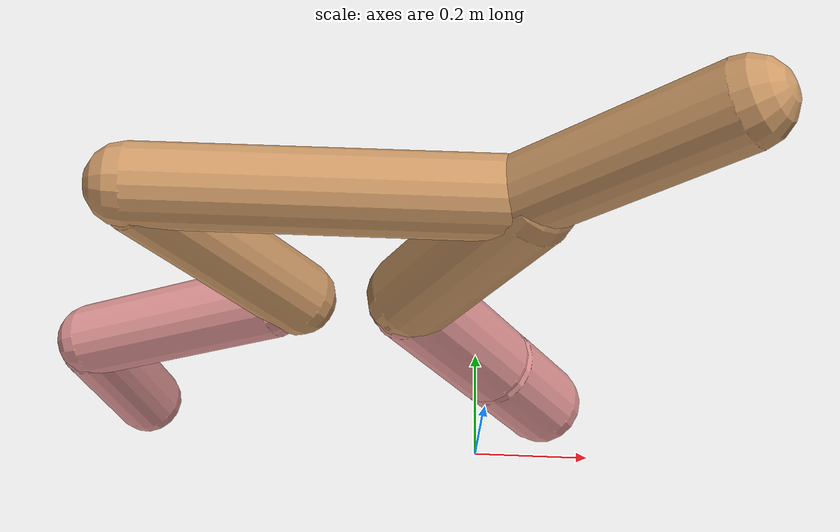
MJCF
<mujoco model="cheetah">
  <compiler angle="radian" coordinate="local" inertiafromgeom="true" settotalmass="14" />
  <default>
    <joint armature=".1" damping=".01" limited="true" solimplimit="0 .8 .03" solreflimit=".02 1" stiffness="8" />
    <geom conaffinity="0" condim="3" contype="1" friction="0.8 .1 .1" rgba="0.8 0.6 .4 1" solimp="0.0 0.8 0.01" solref="0.02 1" />
    <motor ctrllimited="true" ctrlrange="-1 1" />
  </default>
  <size nstack="300000" nuser_geom="1" />
  <option gravity="0 0 -9.81" timestep="0.01" />
  <worldbody>
    <body name="torso" pos="0.0 0.0 0.8014417547784054">
      <joint armature="0" axis="1 0 0" damping="0" limited="false" name="ignorex" pos="0 0 0" stiffness="0" type="slide" />
      <joint armature="0" axis="0 0 1" damping="0" limited="false" name="ignorez" pos="0 0 0" stiffness="0" type="slide" />
      <joint armature="0" axis="0 1 0" damping="0" limited="false" name="ignorey" pos="0 0 0" stiffness="0" type="hinge" />
      <geom fromto="-0.5 0.0 0.0 0.010908813829544395 0.0 0.0" name="torso" size="0.0554591432715734" type="capsule" />
      <geom axisangle="0 1 0 .87" name="head" pos="0.11090881382954432 0.0 0.1" size="0.05593423595110947 0.15" type="capsule" />

      <body name="bthigh" pos="-.5 0 0">
        <joint axis="0 1 0" damping="6" name="bthigh" pos="0 0 0" range="-.52 1.05" stiffness="240" type="hinge" />
        <geom axisangle="0 1 0 -3.8" name="bthigh" pos="0.10760022777605177 0.0 -0.1398802961088673" size="0.05498815088286786 0.15746530037531253" type="capsule" />
        <body name="bshin" pos="0.17520045555210353 0.0 -0.2697605922177346">
          <joint axis="0 1 0" damping="4.5" name="bshin" pos="0 0 0" range="-.785 .785" stiffness="180" type="hinge" />
          <geom axisangle="0 1 0 -2.03" name="bshin" pos="-0.1515337623444769 0.0 -0.07576688117223845" rgba="0.9 0.6 0.6 1" size="0.05498815088286786 0.16289513831928884" type="capsule" />
          <body name="bfoot" pos="-0.3030675246889538 0.0 -0.1515337623444769">
            <joint axis="0 1 0" damping="3" name="bfoot" pos="0 0 0" range="-.4 .785" stiffness="120" type="hinge" />
            <geom axisangle="0 1 0 -.27" name="bfoot" pos="0.03238767704631166 0.0 -0.10472015578307436" rgba="0.9 0.6 0.6 1" size="0.05498815088286786 0.10208095334675434" type="capsule" />
            <inertial mass="10" />
          </body>
        </body>
      </body>
      <body name="fthigh" pos="0.01090881382954434 0.0 0.0">
        <joint axis="0 1 0" damping="4.5" name="fthigh" pos="0 0 0" range="-1.5 0.8" stiffness="180" type="hinge" />
        <geom axisangle="0 1 0 .52" name="fthigh" pos="-0.07424887277859173 0.0 -0.12728378190615722" size="0.0647469086130747 0.14143246101355478" type="capsule" />
        <body name="fshin" pos="-0.14849774555718345 0.0 -0.25456756381231443">
          <joint axis="0 1 0" damping="3" name="fshin" pos="0 0 0" range="-1.2 1.1" stiffness="120" type="hinge" />
          <geom axisangle="0 1 0 -.6" name="fshin" pos="0.06893485251522027 0.0 -0.09544825732876654" rgba="0.9 0.6 0.6 1" size="0.0647469086130747 0.11272060802584064" type="capsule" />
          <body name="ffoot" pos="0.13786970503044055 0.0 -0.19089651465753307">
            <joint axis="0 1 0" damping="1.5" name="ffoot" pos="0 0 0" range="-3.1 -0.3" stiffness="60" type="hinge" />
            <geom axisangle="0 1 0 -.6" name="ffoot" pos="0.04739995647712361 0.0 -0.07373326563108118" rgba="0.9 0.6 0.6 1" size="0.0647469086130747 0.07443813737555514" type="capsule" />
            <inertial mass="10" />
          </body>
        </body>
      </body>
    </body>
  </worldbody>
  <actuator>
    <motor gear="120" joint="bthigh" name="bthigh" />
    <motor gear="90" joint="bshin" name="bshin" />
    <motor gear="60" joint="bfoot" name="bfoot" />
    <motor gear="120" joint="fthigh" name="fthigh" />
    <motor gear="60" joint="fshin" name="fshin" />
    <motor gear="30" joint="ffoot" name="ffoot" />
  </actuator>
</mujoco>
